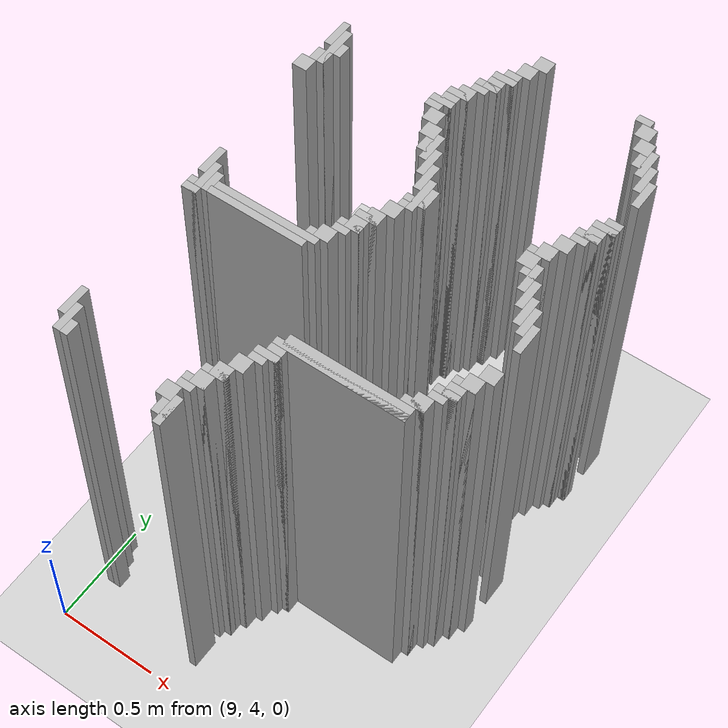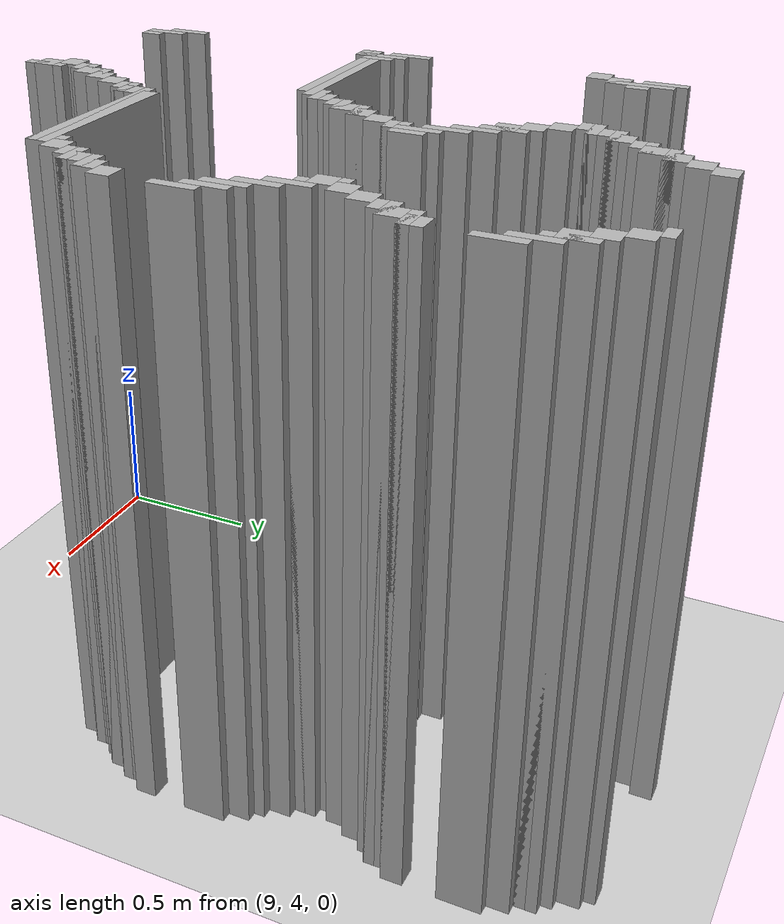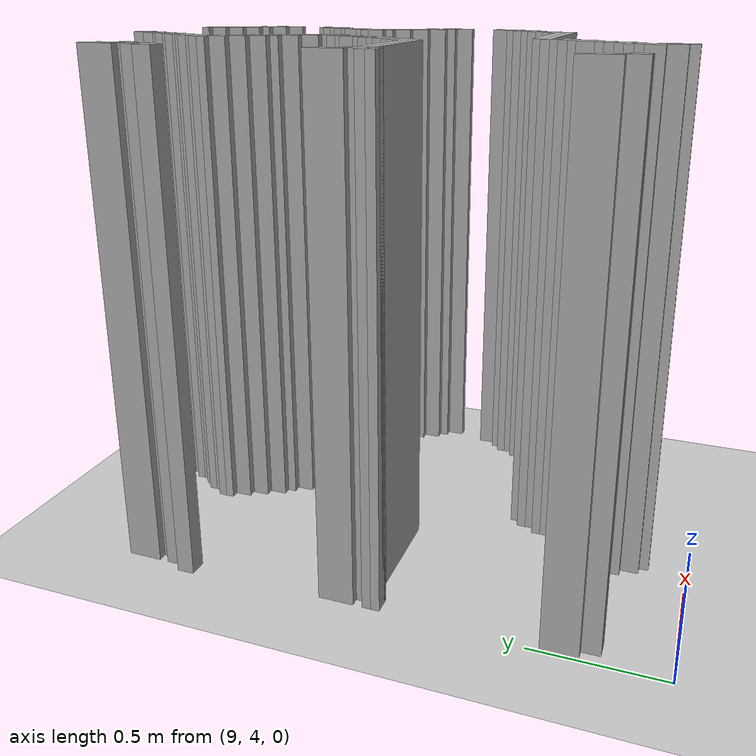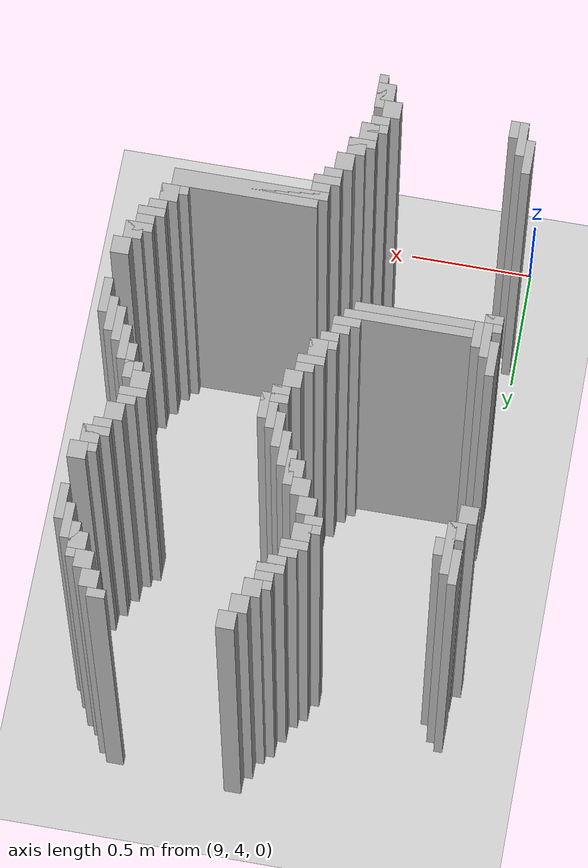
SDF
<sdf version="1.6">
 <world name="slam_world">
  <model name="ground_plane">
   <static>true</static>
   <link name="link">
    <collision name="collision">
     <geometry><plane><normal>0 0 1</normal><size>100 100</size></plane></geometry>
    </collision>
    <visual name="visual">
     <geometry><plane><normal>0 0 1</normal><size>100 100</size></plane></geometry>
     <material>
      <ambient>0.8 0.8 0.8 1</ambient>
      <diffuse>0.8 0.8 0.8 1</diffuse>
      <specular>0.8 0.8 0.8 1</specular>
     </material>
    </visual>
   </link>
  </model>
  <model name="wall_3695">
   <static>true</static>
   <pose>9.814385150812065 6.403712296983758 1.0 0 0 0</pose>
   <link name="link">
    <collision name="collision">
     <geometry><box><size>0.06960556844547564 0.06960556844547564 2.0</size></box></geometry>
    </collision>
    <visual name="visual">
     <geometry><box><size>0.06960556844547564 0.06960556844547564 2.0</size></box></geometry>
     <material><ambient>0.5 0.5 0.5 1</ambient><diffuse>0.7 0.7 0.7 1</diffuse></material>
    </visual>
   </link>
  </model>
  <model name="wall_3706">
   <static>true</static>
   <pose>10.301624129930394 6.386310904872389 1.0 0 0 0</pose>
   <link name="link">
    <collision name="collision">
     <geometry><box><size>0.06960556844547564 0.03480278422273782 2.0</size></box></geometry>
    </collision>
    <visual name="visual">
     <geometry><box><size>0.06960556844547564 0.03480278422273782 2.0</size></box></geometry>
     <material><ambient>0.5 0.5 0.5 1</ambient><diffuse>0.7 0.7 0.7 1</diffuse></material>
    </visual>
   </link>
  </model>
  <model name="wall_3721">
   <static>true</static>
   <pose>9.779582366589327 6.334106728538282 1.0 0 0 0</pose>
   <link name="link">
    <collision name="collision">
     <geometry><box><size>0.06960556844547564 0.06960556844547564 2.0</size></box></geometry>
    </collision>
    <visual name="visual">
     <geometry><box><size>0.06960556844547564 0.06960556844547564 2.0</size></box></geometry>
     <material><ambient>0.5 0.5 0.5 1</ambient><diffuse>0.7 0.7 0.7 1</diffuse></material>
    </visual>
   </link>
  </model>
  <model name="wall_3722">
   <static>true</static>
   <pose>10.336426914153131 6.334106728538282 1.0 0 0 0</pose>
   <link name="link">
    <collision name="collision">
     <geometry><box><size>0.06960556844547564 0.06960556844547564 2.0</size></box></geometry>
    </collision>
    <visual name="visual">
     <geometry><box><size>0.06960556844547564 0.06960556844547564 2.0</size></box></geometry>
     <material><ambient>0.5 0.5 0.5 1</ambient><diffuse>0.7 0.7 0.7 1</diffuse></material>
    </visual>
   </link>
  </model>
  <model name="wall_3748">
   <static>true</static>
   <pose>9.744779582366588 6.2645011600928076 1.0 0 0 0</pose>
   <link name="link">
    <collision name="collision">
     <geometry><box><size>0.06960556844547564 0.06960556844547564 2.0</size></box></geometry>
    </collision>
    <visual name="visual">
     <geometry><box><size>0.06960556844547564 0.06960556844547564 2.0</size></box></geometry>
     <material><ambient>0.5 0.5 0.5 1</ambient><diffuse>0.7 0.7 0.7 1</diffuse></material>
    </visual>
   </link>
  </model>
  <model name="wall_3749">
   <static>true</static>
   <pose>10.37122969837587 6.2645011600928076 1.0 0 0 0</pose>
   <link name="link">
    <collision name="collision">
     <geometry><box><size>0.06960556844547564 0.06960556844547564 2.0</size></box></geometry>
    </collision>
    <visual name="visual">
     <geometry><box><size>0.06960556844547564 0.06960556844547564 2.0</size></box></geometry>
     <material><ambient>0.5 0.5 0.5 1</ambient><diffuse>0.7 0.7 0.7 1</diffuse></material>
    </visual>
   </link>
  </model>
  <model name="wall_3766">
   <static>true</static>
   <pose>9.72737819025522 6.247099767981438 1.0 0 0 0</pose>
   <link name="link">
    <collision name="collision">
     <geometry><box><size>0.10440835266821345 0.03480278422273782 2.0</size></box></geometry>
    </collision>
    <visual name="visual">
     <geometry><box><size>0.10440835266821345 0.03480278422273782 2.0</size></box></geometry>
     <material><ambient>0.5 0.5 0.5 1</ambient><diffuse>0.7 0.7 0.7 1</diffuse></material>
    </visual>
   </link>
  </model>
  <model name="wall_3767">
   <static>true</static>
   <pose>10.423433874709977 6.194895591647332 1.0 0 0 0</pose>
   <link name="link">
    <collision name="collision">
     <geometry><box><size>0.03480278422273782 0.13921113689095127 2.0</size></box></geometry>
    </collision>
    <visual name="visual">
     <geometry><box><size>0.03480278422273782 0.13921113689095127 2.0</size></box></geometry>
     <material><ambient>0.5 0.5 0.5 1</ambient><diffuse>0.7 0.7 0.7 1</diffuse></material>
    </visual>
   </link>
  </model>
  <model name="wall_3784">
   <static>true</static>
   <pose>9.70997679814385 6.194895591647332 1.0 0 0 0</pose>
   <link name="link">
    <collision name="collision">
     <geometry><box><size>0.06960556844547564 0.06960556844547564 2.0</size></box></geometry>
    </collision>
    <visual name="visual">
     <geometry><box><size>0.06960556844547564 0.06960556844547564 2.0</size></box></geometry>
     <material><ambient>0.5 0.5 0.5 1</ambient><diffuse>0.7 0.7 0.7 1</diffuse></material>
    </visual>
   </link>
  </model>
  <model name="wall_3785">
   <static>true</static>
   <pose>10.406032482598608 6.194895591647332 1.0 0 0 0</pose>
   <link name="link">
    <collision name="collision">
     <geometry><box><size>0.06960556844547564 0.06960556844547564 2.0</size></box></geometry>
    </collision>
    <visual name="visual">
     <geometry><box><size>0.06960556844547564 0.06960556844547564 2.0</size></box></geometry>
     <material><ambient>0.5 0.5 0.5 1</ambient><diffuse>0.7 0.7 0.7 1</diffuse></material>
    </visual>
   </link>
  </model>
  <model name="wall_3802">
   <static>true</static>
   <pose>9.692575406032482 6.177494199535962 1.0 0 0 0</pose>
   <link name="link">
    <collision name="collision">
     <geometry><box><size>0.10440835266821345 0.03480278422273782 2.0</size></box></geometry>
    </collision>
    <visual name="visual">
     <geometry><box><size>0.10440835266821345 0.03480278422273782 2.0</size></box></geometry>
     <material><ambient>0.5 0.5 0.5 1</ambient><diffuse>0.7 0.7 0.7 1</diffuse></material>
    </visual>
   </link>
  </model>
  <model name="wall_3803">
   <static>true</static>
   <pose>10.458236658932714 6.125290023201856 1.0 0 0 0</pose>
   <link name="link">
    <collision name="collision">
     <geometry><box><size>0.03480278422273782 0.13921113689095127 2.0</size></box></geometry>
    </collision>
    <visual name="visual">
     <geometry><box><size>0.03480278422273782 0.13921113689095127 2.0</size></box></geometry>
     <material><ambient>0.5 0.5 0.5 1</ambient><diffuse>0.7 0.7 0.7 1</diffuse></material>
    </visual>
   </link>
  </model>
  <model name="wall_3813">
   <static>true</static>
   <pose>9.675174013921113 6.142691415313225 1.0 0 0 0</pose>
   <link name="link">
    <collision name="collision">
     <geometry><box><size>0.06960556844547564 0.03480278422273782 2.0</size></box></geometry>
    </collision>
    <visual name="visual">
     <geometry><box><size>0.06960556844547564 0.03480278422273782 2.0</size></box></geometry>
     <material><ambient>0.5 0.5 0.5 1</ambient><diffuse>0.7 0.7 0.7 1</diffuse></material>
    </visual>
   </link>
  </model>
  <model name="wall_3828">
   <static>true</static>
   <pose>9.031322505800464 6.05568445475638 1.0 0 0 0</pose>
   <link name="link">
    <collision name="collision">
     <geometry><box><size>0.03480278422273782 0.13921113689095127 2.0</size></box></geometry>
    </collision>
    <visual name="visual">
     <geometry><box><size>0.03480278422273782 0.13921113689095127 2.0</size></box></geometry>
     <material><ambient>0.5 0.5 0.5 1</ambient><diffuse>0.7 0.7 0.7 1</diffuse></material>
    </visual>
   </link>
  </model>
  <model name="wall_3829">
   <static>true</static>
   <pose>9.640371229698376 6.090487238979118 1.0 0 0 0</pose>
   <link name="link">
    <collision name="collision">
     <geometry><box><size>0.06960556844547564 0.06960556844547564 2.0</size></box></geometry>
    </collision>
    <visual name="visual">
     <geometry><box><size>0.06960556844547564 0.06960556844547564 2.0</size></box></geometry>
     <material><ambient>0.5 0.5 0.5 1</ambient><diffuse>0.7 0.7 0.7 1</diffuse></material>
    </visual>
   </link>
  </model>
  <model name="wall_3830">
   <static>true</static>
   <pose>10.493039443155451 6.05568445475638 1.0 0 0 0</pose>
   <link name="link">
    <collision name="collision">
     <geometry><box><size>0.03480278422273782 0.13921113689095127 2.0</size></box></geometry>
    </collision>
    <visual name="visual">
     <geometry><box><size>0.03480278422273782 0.13921113689095127 2.0</size></box></geometry>
     <material><ambient>0.5 0.5 0.5 1</ambient><diffuse>0.7 0.7 0.7 1</diffuse></material>
    </visual>
   </link>
  </model>
  <model name="wall_3846">
   <static>true</static>
   <pose>9.066125290023201 5.986078886310905 1.0 0 0 0</pose>
   <link name="link">
    <collision name="collision">
     <geometry><box><size>0.03480278422273782 0.2088167053364269 2.0</size></box></geometry>
    </collision>
    <visual name="visual">
     <geometry><box><size>0.03480278422273782 0.2088167053364269 2.0</size></box></geometry>
     <material><ambient>0.5 0.5 0.5 1</ambient><diffuse>0.7 0.7 0.7 1</diffuse></material>
    </visual>
   </link>
  </model>
  <model name="wall_3847">
   <static>true</static>
   <pose>9.622969837587007 6.073085846867749 1.0 0 0 0</pose>
   <link name="link">
    <collision name="collision">
     <geometry><box><size>0.10440835266821345 0.03480278422273782 2.0</size></box></geometry>
    </collision>
    <visual name="visual">
     <geometry><box><size>0.10440835266821345 0.03480278422273782 2.0</size></box></geometry>
     <material><ambient>0.5 0.5 0.5 1</ambient><diffuse>0.7 0.7 0.7 1</diffuse></material>
    </visual>
   </link>
  </model>
  <model name="wall_3858">
   <static>true</static>
   <pose>9.605568445475638 6.020881670533642 1.0 0 0 0</pose>
   <link name="link">
    <collision name="collision">
     <geometry><box><size>0.06960556844547564 0.06960556844547564 2.0</size></box></geometry>
    </collision>
    <visual name="visual">
     <geometry><box><size>0.06960556844547564 0.06960556844547564 2.0</size></box></geometry>
     <material><ambient>0.5 0.5 0.5 1</ambient><diffuse>0.7 0.7 0.7 1</diffuse></material>
    </visual>
   </link>
  </model>
  <model name="wall_3871">
   <static>true</static>
   <pose>9.100928074245939 5.986078886310905 1.0 0 0 0</pose>
   <link name="link">
    <collision name="collision">
     <geometry><box><size>0.03480278422273782 0.06960556844547564 2.0</size></box></geometry>
    </collision>
    <visual name="visual">
     <geometry><box><size>0.03480278422273782 0.06960556844547564 2.0</size></box></geometry>
     <material><ambient>0.5 0.5 0.5 1</ambient><diffuse>0.7 0.7 0.7 1</diffuse></material>
    </visual>
   </link>
  </model>
  <model name="wall_3872">
   <static>true</static>
   <pose>9.588167053364268 6.003480278422273 1.0 0 0 0</pose>
   <link name="link">
    <collision name="collision">
     <geometry><box><size>0.10440835266821345 0.03480278422273782 2.0</size></box></geometry>
    </collision>
    <visual name="visual">
     <geometry><box><size>0.10440835266821345 0.03480278422273782 2.0</size></box></geometry>
     <material><ambient>0.5 0.5 0.5 1</ambient><diffuse>0.7 0.7 0.7 1</diffuse></material>
    </visual>
   </link>
  </model>
  <model name="wall_3883">
   <static>true</static>
   <pose>9.5707656612529 5.968677494199536 1.0 0 0 0</pose>
   <link name="link">
    <collision name="collision">
     <geometry><box><size>0.06960556844547564 0.03480278422273782 2.0</size></box></geometry>
    </collision>
    <visual name="visual">
     <geometry><box><size>0.06960556844547564 0.03480278422273782 2.0</size></box></geometry>
     <material><ambient>0.5 0.5 0.5 1</ambient><diffuse>0.7 0.7 0.7 1</diffuse></material>
    </visual>
   </link>
  </model>
  <model name="wall_3893">
   <static>true</static>
   <pose>9.048723897911833 5.916473317865429 1.0 0 0 0</pose>
   <link name="link">
    <collision name="collision">
     <geometry><box><size>0.06960556844547564 0.06960556844547564 2.0</size></box></geometry>
    </collision>
    <visual name="visual">
     <geometry><box><size>0.06960556844547564 0.06960556844547564 2.0</size></box></geometry>
     <material><ambient>0.5 0.5 0.5 1</ambient><diffuse>0.7 0.7 0.7 1</diffuse></material>
    </visual>
   </link>
  </model>
  <model name="wall_3894">
   <static>true</static>
   <pose>9.605568445475638 5.916473317865429 1.0 0 0 0</pose>
   <link name="link">
    <collision name="collision">
     <geometry><box><size>0.06960556844547564 0.06960556844547564 2.0</size></box></geometry>
    </collision>
    <visual name="visual">
     <geometry><box><size>0.06960556844547564 0.06960556844547564 2.0</size></box></geometry>
     <material><ambient>0.5 0.5 0.5 1</ambient><diffuse>0.7 0.7 0.7 1</diffuse></material>
    </visual>
   </link>
  </model>
  <model name="wall_3909">
   <static>true</static>
   <pose>9.013921113689095 5.846867749419953 1.0 0 0 0</pose>
   <link name="link">
    <collision name="collision">
     <geometry><box><size>0.06960556844547564 0.06960556844547564 2.0</size></box></geometry>
    </collision>
    <visual name="visual">
     <geometry><box><size>0.06960556844547564 0.06960556844547564 2.0</size></box></geometry>
     <material><ambient>0.5 0.5 0.5 1</ambient><diffuse>0.7 0.7 0.7 1</diffuse></material>
    </visual>
   </link>
  </model>
  <model name="wall_3910">
   <static>true</static>
   <pose>9.640371229698376 5.846867749419953 1.0 0 0 0</pose>
   <link name="link">
    <collision name="collision">
     <geometry><box><size>0.06960556844547564 0.06960556844547564 2.0</size></box></geometry>
    </collision>
    <visual name="visual">
     <geometry><box><size>0.06960556844547564 0.06960556844547564 2.0</size></box></geometry>
     <material><ambient>0.5 0.5 0.5 1</ambient><diffuse>0.7 0.7 0.7 1</diffuse></material>
    </visual>
   </link>
  </model>
  <model name="wall_3911">
   <static>true</static>
   <pose>10.475638051044083 5.846867749419953 1.0 0 0 0</pose>
   <link name="link">
    <collision name="collision">
     <geometry><box><size>0.06960556844547564 0.06960556844547564 2.0</size></box></geometry>
    </collision>
    <visual name="visual">
     <geometry><box><size>0.06960556844547564 0.06960556844547564 2.0</size></box></geometry>
     <material><ambient>0.5 0.5 0.5 1</ambient><diffuse>0.7 0.7 0.7 1</diffuse></material>
    </visual>
   </link>
  </model>
  <model name="wall_3921">
   <static>true</static>
   <pose>9.692575406032482 5.7772621809744775 1.0 0 0 0</pose>
   <link name="link">
    <collision name="collision">
     <geometry><box><size>0.03480278422273782 0.13921113689095127 2.0</size></box></geometry>
    </collision>
    <visual name="visual">
     <geometry><box><size>0.03480278422273782 0.13921113689095127 2.0</size></box></geometry>
     <material><ambient>0.5 0.5 0.5 1</ambient><diffuse>0.7 0.7 0.7 1</diffuse></material>
    </visual>
   </link>
  </model>
  <model name="wall_3922">
   <static>true</static>
   <pose>10.458236658932714 5.8294663573085845 1.0 0 0 0</pose>
   <link name="link">
    <collision name="collision">
     <geometry><box><size>0.10440835266821345 0.03480278422273782 2.0</size></box></geometry>
    </collision>
    <visual name="visual">
     <geometry><box><size>0.10440835266821345 0.03480278422273782 2.0</size></box></geometry>
     <material><ambient>0.5 0.5 0.5 1</ambient><diffuse>0.7 0.7 0.7 1</diffuse></material>
    </visual>
   </link>
  </model>
  <model name="wall_3932">
   <static>true</static>
   <pose>9.675174013921113 5.7772621809744775 1.0 0 0 0</pose>
   <link name="link">
    <collision name="collision">
     <geometry><box><size>0.06960556844547564 0.06960556844547564 2.0</size></box></geometry>
    </collision>
    <visual name="visual">
     <geometry><box><size>0.06960556844547564 0.06960556844547564 2.0</size></box></geometry>
     <material><ambient>0.5 0.5 0.5 1</ambient><diffuse>0.7 0.7 0.7 1</diffuse></material>
    </visual>
   </link>
  </model>
  <model name="wall_3933">
   <static>true</static>
   <pose>10.440835266821345 5.7772621809744775 1.0 0 0 0</pose>
   <link name="link">
    <collision name="collision">
     <geometry><box><size>0.06960556844547564 0.06960556844547564 2.0</size></box></geometry>
    </collision>
    <visual name="visual">
     <geometry><box><size>0.06960556844547564 0.06960556844547564 2.0</size></box></geometry>
     <material><ambient>0.5 0.5 0.5 1</ambient><diffuse>0.7 0.7 0.7 1</diffuse></material>
    </visual>
   </link>
  </model>
  <model name="wall_3943">
   <static>true</static>
   <pose>9.72737819025522 5.707656612529002 1.0 0 0 0</pose>
   <link name="link">
    <collision name="collision">
     <geometry><box><size>0.03480278422273782 0.13921113689095127 2.0</size></box></geometry>
    </collision>
    <visual name="visual">
     <geometry><box><size>0.03480278422273782 0.13921113689095127 2.0</size></box></geometry>
     <material><ambient>0.5 0.5 0.5 1</ambient><diffuse>0.7 0.7 0.7 1</diffuse></material>
    </visual>
   </link>
  </model>
  <model name="wall_3944">
   <static>true</static>
   <pose>10.423433874709977 5.759860788863109 1.0 0 0 0</pose>
   <link name="link">
    <collision name="collision">
     <geometry><box><size>0.10440835266821345 0.03480278422273782 2.0</size></box></geometry>
    </collision>
    <visual name="visual">
     <geometry><box><size>0.10440835266821345 0.03480278422273782 2.0</size></box></geometry>
     <material><ambient>0.5 0.5 0.5 1</ambient><diffuse>0.7 0.7 0.7 1</diffuse></material>
    </visual>
   </link>
  </model>
  <model name="wall_3953">
   <static>true</static>
   <pose>10.406032482598608 5.725058004640371 1.0 0 0 0</pose>
   <link name="link">
    <collision name="collision">
     <geometry><box><size>0.06960556844547564 0.03480278422273782 2.0</size></box></geometry>
    </collision>
    <visual name="visual">
     <geometry><box><size>0.06960556844547564 0.03480278422273782 2.0</size></box></geometry>
     <material><ambient>0.5 0.5 0.5 1</ambient><diffuse>0.7 0.7 0.7 1</diffuse></material>
    </visual>
   </link>
  </model>
  <model name="wall_3963">
   <static>true</static>
   <pose>9.762180974477959 5.638051044083526 1.0 0 0 0</pose>
   <link name="link">
    <collision name="collision">
     <geometry><box><size>0.03480278422273782 0.13921113689095127 2.0</size></box></geometry>
    </collision>
    <visual name="visual">
     <geometry><box><size>0.03480278422273782 0.13921113689095127 2.0</size></box></geometry>
     <material><ambient>0.5 0.5 0.5 1</ambient><diffuse>0.7 0.7 0.7 1</diffuse></material>
    </visual>
   </link>
  </model>
  <model name="wall_3964">
   <static>true</static>
   <pose>10.37122969837587 5.672853828306264 1.0 0 0 0</pose>
   <link name="link">
    <collision name="collision">
     <geometry><box><size>0.06960556844547564 0.06960556844547564 2.0</size></box></geometry>
    </collision>
    <visual name="visual">
     <geometry><box><size>0.06960556844547564 0.06960556844547564 2.0</size></box></geometry>
     <material><ambient>0.5 0.5 0.5 1</ambient><diffuse>0.7 0.7 0.7 1</diffuse></material>
    </visual>
   </link>
  </model>
  <model name="wall_3974">
   <static>true</static>
   <pose>9.796983758700696 5.551044083526682 1.0 0 0 0</pose>
   <link name="link">
    <collision name="collision">
     <geometry><box><size>0.03480278422273782 0.17401392111368907 2.0</size></box></geometry>
    </collision>
    <visual name="visual">
     <geometry><box><size>0.03480278422273782 0.17401392111368907 2.0</size></box></geometry>
     <material><ambient>0.5 0.5 0.5 1</ambient><diffuse>0.7 0.7 0.7 1</diffuse></material>
    </visual>
   </link>
  </model>
  <model name="wall_3975">
   <static>true</static>
   <pose>10.336426914153131 5.603248259860789 1.0 0 0 0</pose>
   <link name="link">
    <collision name="collision">
     <geometry><box><size>0.06960556844547564 0.06960556844547564 2.0</size></box></geometry>
    </collision>
    <visual name="visual">
     <geometry><box><size>0.06960556844547564 0.06960556844547564 2.0</size></box></geometry>
     <material><ambient>0.5 0.5 0.5 1</ambient><diffuse>0.7 0.7 0.7 1</diffuse></material>
    </visual>
   </link>
  </model>
  <model name="wall_3986">
   <static>true</static>
   <pose>9.831786542923433 5.551044083526682 1.0 0 0 0</pose>
   <link name="link">
    <collision name="collision">
     <geometry><box><size>0.03480278422273782 0.10440835266821345 2.0</size></box></geometry>
    </collision>
    <visual name="visual">
     <geometry><box><size>0.03480278422273782 0.10440835266821345 2.0</size></box></geometry>
     <material><ambient>0.5 0.5 0.5 1</ambient><diffuse>0.7 0.7 0.7 1</diffuse></material>
    </visual>
   </link>
  </model>
  <model name="wall_3987">
   <static>true</static>
   <pose>10.319025522041763 5.58584686774942 1.0 0 0 0</pose>
   <link name="link">
    <collision name="collision">
     <geometry><box><size>0.10440835266821345 0.03480278422273782 2.0</size></box></geometry>
    </collision>
    <visual name="visual">
     <geometry><box><size>0.10440835266821345 0.03480278422273782 2.0</size></box></geometry>
     <material><ambient>0.5 0.5 0.5 1</ambient><diffuse>0.7 0.7 0.7 1</diffuse></material>
    </visual>
   </link>
  </model>
  <model name="wall_3998">
   <static>true</static>
   <pose>10.301624129930394 5.533642691415313 1.0 0 0 0</pose>
   <link name="link">
    <collision name="collision">
     <geometry><box><size>0.06960556844547564 0.06960556844547564 2.0</size></box></geometry>
    </collision>
    <visual name="visual">
     <geometry><box><size>0.06960556844547564 0.06960556844547564 2.0</size></box></geometry>
     <material><ambient>0.5 0.5 0.5 1</ambient><diffuse>0.7 0.7 0.7 1</diffuse></material>
    </visual>
   </link>
  </model>
  <model name="wall_4014">
   <static>true</static>
   <pose>9.796983758700696 5.516241299303944 1.0 0 0 0</pose>
   <link name="link">
    <collision name="collision">
     <geometry><box><size>0.10440835266821345 0.03480278422273782 2.0</size></box></geometry>
    </collision>
    <visual name="visual">
     <geometry><box><size>0.10440835266821345 0.03480278422273782 2.0</size></box></geometry>
     <material><ambient>0.5 0.5 0.5 1</ambient><diffuse>0.7 0.7 0.7 1</diffuse></material>
    </visual>
   </link>
  </model>
  <model name="wall_4015">
   <static>true</static>
   <pose>10.3538283062645 5.464037122969837 1.0 0 0 0</pose>
   <link name="link">
    <collision name="collision">
     <geometry><box><size>0.03480278422273782 0.13921113689095127 2.0</size></box></geometry>
    </collision>
    <visual name="visual">
     <geometry><box><size>0.03480278422273782 0.13921113689095127 2.0</size></box></geometry>
     <material><ambient>0.5 0.5 0.5 1</ambient><diffuse>0.7 0.7 0.7 1</diffuse></material>
    </visual>
   </link>
  </model>
  <model name="wall_4030">
   <static>true</static>
   <pose>9.779582366589327 5.481438515081206 1.0 0 0 0</pose>
   <link name="link">
    <collision name="collision">
     <geometry><box><size>0.06960556844547564 0.03480278422273782 2.0</size></box></geometry>
    </collision>
    <visual name="visual">
     <geometry><box><size>0.06960556844547564 0.03480278422273782 2.0</size></box></geometry>
     <material><ambient>0.5 0.5 0.5 1</ambient><diffuse>0.7 0.7 0.7 1</diffuse></material>
    </visual>
   </link>
  </model>
  <model name="wall_4031">
   <static>true</static>
   <pose>10.336426914153131 5.481438515081206 1.0 0 0 0</pose>
   <link name="link">
    <collision name="collision">
     <geometry><box><size>0.06960556844547564 0.03480278422273782 2.0</size></box></geometry>
    </collision>
    <visual name="visual">
     <geometry><box><size>0.06960556844547564 0.03480278422273782 2.0</size></box></geometry>
     <material><ambient>0.5 0.5 0.5 1</ambient><diffuse>0.7 0.7 0.7 1</diffuse></material>
    </visual>
   </link>
  </model>
  <model name="wall_4045">
   <static>true</static>
   <pose>9.744779582366588 5.4292343387471 1.0 0 0 0</pose>
   <link name="link">
    <collision name="collision">
     <geometry><box><size>0.06960556844547564 0.06960556844547564 2.0</size></box></geometry>
    </collision>
    <visual name="visual">
     <geometry><box><size>0.06960556844547564 0.06960556844547564 2.0</size></box></geometry>
     <material><ambient>0.5 0.5 0.5 1</ambient><diffuse>0.7 0.7 0.7 1</diffuse></material>
    </visual>
   </link>
  </model>
  <model name="wall_4046">
   <static>true</static>
   <pose>10.38863109048724 5.3944315545243615 1.0 0 0 0</pose>
   <link name="link">
    <collision name="collision">
     <geometry><box><size>0.03480278422273782 0.13921113689095127 2.0</size></box></geometry>
    </collision>
    <visual name="visual">
     <geometry><box><size>0.03480278422273782 0.13921113689095127 2.0</size></box></geometry>
     <material><ambient>0.5 0.5 0.5 1</ambient><diffuse>0.7 0.7 0.7 1</diffuse></material>
    </visual>
   </link>
  </model>
  <model name="wall_4060">
   <static>true</static>
   <pose>9.70997679814385 5.359628770301624 1.0 0 0 0</pose>
   <link name="link">
    <collision name="collision">
     <geometry><box><size>0.06960556844547564 0.06960556844547564 2.0</size></box></geometry>
    </collision>
    <visual name="visual">
     <geometry><box><size>0.06960556844547564 0.06960556844547564 2.0</size></box></geometry>
     <material><ambient>0.5 0.5 0.5 1</ambient><diffuse>0.7 0.7 0.7 1</diffuse></material>
    </visual>
   </link>
  </model>
  <model name="wall_4061">
   <static>true</static>
   <pose>10.423433874709977 5.324825986078886 1.0 0 0 0</pose>
   <link name="link">
    <collision name="collision">
     <geometry><box><size>0.03480278422273782 0.13921113689095127 2.0</size></box></geometry>
    </collision>
    <visual name="visual">
     <geometry><box><size>0.03480278422273782 0.13921113689095127 2.0</size></box></geometry>
     <material><ambient>0.5 0.5 0.5 1</ambient><diffuse>0.7 0.7 0.7 1</diffuse></material>
    </visual>
   </link>
  </model>
  <model name="wall_4075">
   <static>true</static>
   <pose>9.692575406032482 5.342227378190255 1.0 0 0 0</pose>
   <link name="link">
    <collision name="collision">
     <geometry><box><size>0.10440835266821345 0.03480278422273782 2.0</size></box></geometry>
    </collision>
    <visual name="visual">
     <geometry><box><size>0.10440835266821345 0.03480278422273782 2.0</size></box></geometry>
     <material><ambient>0.5 0.5 0.5 1</ambient><diffuse>0.7 0.7 0.7 1</diffuse></material>
    </visual>
   </link>
  </model>
  <model name="wall_4076">
   <static>true</static>
   <pose>10.458236658932714 5.290023201856148 1.0 0 0 0</pose>
   <link name="link">
    <collision name="collision">
     <geometry><box><size>0.03480278422273782 0.13921113689095127 2.0</size></box></geometry>
    </collision>
    <visual name="visual">
     <geometry><box><size>0.03480278422273782 0.13921113689095127 2.0</size></box></geometry>
     <material><ambient>0.5 0.5 0.5 1</ambient><diffuse>0.7 0.7 0.7 1</diffuse></material>
    </visual>
   </link>
  </model>
  <model name="wall_4088">
   <static>true</static>
   <pose>9.675174013921113 5.290023201856148 1.0 0 0 0</pose>
   <link name="link">
    <collision name="collision">
     <geometry><box><size>0.06960556844547564 0.06960556844547564 2.0</size></box></geometry>
    </collision>
    <visual name="visual">
     <geometry><box><size>0.06960556844547564 0.06960556844547564 2.0</size></box></geometry>
     <material><ambient>0.5 0.5 0.5 1</ambient><diffuse>0.7 0.7 0.7 1</diffuse></material>
    </visual>
   </link>
  </model>
  <model name="wall_4100">
   <static>true</static>
   <pose>9.031322505800464 5.220417633410673 1.0 0 0 0</pose>
   <link name="link">
    <collision name="collision">
     <geometry><box><size>0.03480278422273782 0.13921113689095127 2.0</size></box></geometry>
    </collision>
    <visual name="visual">
     <geometry><box><size>0.03480278422273782 0.13921113689095127 2.0</size></box></geometry>
     <material><ambient>0.5 0.5 0.5 1</ambient><diffuse>0.7 0.7 0.7 1</diffuse></material>
    </visual>
   </link>
  </model>
  <model name="wall_4101">
   <static>true</static>
   <pose>9.657772621809745 5.27262180974478 1.0 0 0 0</pose>
   <link name="link">
    <collision name="collision">
     <geometry><box><size>0.10440835266821345 0.03480278422273782 2.0</size></box></geometry>
    </collision>
    <visual name="visual">
     <geometry><box><size>0.10440835266821345 0.03480278422273782 2.0</size></box></geometry>
     <material><ambient>0.5 0.5 0.5 1</ambient><diffuse>0.7 0.7 0.7 1</diffuse></material>
    </visual>
   </link>
  </model>
  <model name="wall_4102">
   <static>true</static>
   <pose>10.493039443155451 5.220417633410673 1.0 0 0 0</pose>
   <link name="link">
    <collision name="collision">
     <geometry><box><size>0.03480278422273782 0.13921113689095127 2.0</size></box></geometry>
    </collision>
    <visual name="visual">
     <geometry><box><size>0.03480278422273782 0.13921113689095127 2.0</size></box></geometry>
     <material><ambient>0.5 0.5 0.5 1</ambient><diffuse>0.7 0.7 0.7 1</diffuse></material>
    </visual>
   </link>
  </model>
  <model name="wall_4112">
   <static>true</static>
   <pose>9.640371229698376 5.237819025522041 1.0 0 0 0</pose>
   <link name="link">
    <collision name="collision">
     <geometry><box><size>0.06960556844547564 0.03480278422273782 2.0</size></box></geometry>
    </collision>
    <visual name="visual">
     <geometry><box><size>0.06960556844547564 0.03480278422273782 2.0</size></box></geometry>
     <material><ambient>0.5 0.5 0.5 1</ambient><diffuse>0.7 0.7 0.7 1</diffuse></material>
    </visual>
   </link>
  </model>
  <model name="wall_4123">
   <static>true</static>
   <pose>9.066125290023201 5.133410672853828 1.0 0 0 0</pose>
   <link name="link">
    <collision name="collision">
     <geometry><box><size>0.03480278422273782 0.17401392111368907 2.0</size></box></geometry>
    </collision>
    <visual name="visual">
     <geometry><box><size>0.03480278422273782 0.17401392111368907 2.0</size></box></geometry>
     <material><ambient>0.5 0.5 0.5 1</ambient><diffuse>0.7 0.7 0.7 1</diffuse></material>
    </visual>
   </link>
  </model>
  <model name="wall_4124">
   <static>true</static>
   <pose>9.605568445475638 5.185614849187935 1.0 0 0 0</pose>
   <link name="link">
    <collision name="collision">
     <geometry><box><size>0.06960556844547564 0.06960556844547564 2.0</size></box></geometry>
    </collision>
    <visual name="visual">
     <geometry><box><size>0.06960556844547564 0.06960556844547564 2.0</size></box></geometry>
     <material><ambient>0.5 0.5 0.5 1</ambient><diffuse>0.7 0.7 0.7 1</diffuse></material>
    </visual>
   </link>
  </model>
  <model name="wall_4138">
   <static>true</static>
   <pose>9.100928074245939 5.133410672853828 1.0 0 0 0</pose>
   <link name="link">
    <collision name="collision">
     <geometry><box><size>0.03480278422273782 0.10440835266821345 2.0</size></box></geometry>
    </collision>
    <visual name="visual">
     <geometry><box><size>0.03480278422273782 0.10440835266821345 2.0</size></box></geometry>
     <material><ambient>0.5 0.5 0.5 1</ambient><diffuse>0.7 0.7 0.7 1</diffuse></material>
    </visual>
   </link>
  </model>
  <model name="wall_4139">
   <static>true</static>
   <pose>9.588167053364268 5.168213457076566 1.0 0 0 0</pose>
   <link name="link">
    <collision name="collision">
     <geometry><box><size>0.10440835266821345 0.03480278422273782 2.0</size></box></geometry>
    </collision>
    <visual name="visual">
     <geometry><box><size>0.10440835266821345 0.03480278422273782 2.0</size></box></geometry>
     <material><ambient>0.5 0.5 0.5 1</ambient><diffuse>0.7 0.7 0.7 1</diffuse></material>
    </visual>
   </link>
  </model>
  <model name="wall_4153">
   <static>true</static>
   <pose>9.361948955916473 5.133410672853828 1.0 0 0 0</pose>
   <link name="link">
    <collision name="collision">
     <geometry><box><size>0.4872389791183295 0.03480278422273782 2.0</size></box></geometry>
    </collision>
    <visual name="visual">
     <geometry><box><size>0.4872389791183295 0.03480278422273782 2.0</size></box></geometry>
     <material><ambient>0.5 0.5 0.5 1</ambient><diffuse>0.7 0.7 0.7 1</diffuse></material>
    </visual>
   </link>
  </model>
  <model name="wall_4164">
   <static>true</static>
   <pose>9.292343387470996 5.09860788863109 1.0 0 0 0</pose>
   <link name="link">
    <collision name="collision">
     <geometry><box><size>0.5568445475638051 0.03480278422273782 2.0</size></box></geometry>
    </collision>
    <visual name="visual">
     <geometry><box><size>0.5568445475638051 0.03480278422273782 2.0</size></box></geometry>
     <material><ambient>0.5 0.5 0.5 1</ambient><diffuse>0.7 0.7 0.7 1</diffuse></material>
    </visual>
   </link>
  </model>
  <model name="wall_4179">
   <static>true</static>
   <pose>9.048723897911833 5.0638051044083525 1.0 0 0 0</pose>
   <link name="link">
    <collision name="collision">
     <geometry><box><size>0.06960556844547564 0.03480278422273782 2.0</size></box></geometry>
    </collision>
    <visual name="visual">
     <geometry><box><size>0.06960556844547564 0.03480278422273782 2.0</size></box></geometry>
     <material><ambient>0.5 0.5 0.5 1</ambient><diffuse>0.7 0.7 0.7 1</diffuse></material>
    </visual>
   </link>
  </model>
  <model name="wall_4195">
   <static>true</static>
   <pose>10.475638051044083 5.0116009280742455 1.0 0 0 0</pose>
   <link name="link">
    <collision name="collision">
     <geometry><box><size>0.06960556844547564 0.06960556844547564 2.0</size></box></geometry>
    </collision>
    <visual name="visual">
     <geometry><box><size>0.06960556844547564 0.06960556844547564 2.0</size></box></geometry>
     <material><ambient>0.5 0.5 0.5 1</ambient><diffuse>0.7 0.7 0.7 1</diffuse></material>
    </visual>
   </link>
  </model>
  <model name="wall_4210">
   <static>true</static>
   <pose>10.440835266821345 4.94199535962877 1.0 0 0 0</pose>
   <link name="link">
    <collision name="collision">
     <geometry><box><size>0.06960556844547564 0.06960556844547564 2.0</size></box></geometry>
    </collision>
    <visual name="visual">
     <geometry><box><size>0.06960556844547564 0.06960556844547564 2.0</size></box></geometry>
     <material><ambient>0.5 0.5 0.5 1</ambient><diffuse>0.7 0.7 0.7 1</diffuse></material>
    </visual>
   </link>
  </model>
  <model name="wall_4225">
   <static>true</static>
   <pose>10.423433874709977 4.924593967517401 1.0 0 0 0</pose>
   <link name="link">
    <collision name="collision">
     <geometry><box><size>0.10440835266821345 0.03480278422273782 2.0</size></box></geometry>
    </collision>
    <visual name="visual">
     <geometry><box><size>0.10440835266821345 0.03480278422273782 2.0</size></box></geometry>
     <material><ambient>0.5 0.5 0.5 1</ambient><diffuse>0.7 0.7 0.7 1</diffuse></material>
    </visual>
   </link>
  </model>
  <model name="wall_4238">
   <static>true</static>
   <pose>10.406032482598608 4.872389791183294 1.0 0 0 0</pose>
   <link name="link">
    <collision name="collision">
     <geometry><box><size>0.06960556844547564 0.06960556844547564 2.0</size></box></geometry>
    </collision>
    <visual name="visual">
     <geometry><box><size>0.06960556844547564 0.06960556844547564 2.0</size></box></geometry>
     <material><ambient>0.5 0.5 0.5 1</ambient><diffuse>0.7 0.7 0.7 1</diffuse></material>
    </visual>
   </link>
  </model>
  <model name="wall_4251">
   <static>true</static>
   <pose>10.38863109048724 4.854988399071925 1.0 0 0 0</pose>
   <link name="link">
    <collision name="collision">
     <geometry><box><size>0.10440835266821345 0.03480278422273782 2.0</size></box></geometry>
    </collision>
    <visual name="visual">
     <geometry><box><size>0.10440835266821345 0.03480278422273782 2.0</size></box></geometry>
     <material><ambient>0.5 0.5 0.5 1</ambient><diffuse>0.7 0.7 0.7 1</diffuse></material>
    </visual>
   </link>
  </model>
  <model name="wall_4262">
   <static>true</static>
   <pose>10.37122969837587 4.820185614849188 1.0 0 0 0</pose>
   <link name="link">
    <collision name="collision">
     <geometry><box><size>0.06960556844547564 0.03480278422273782 2.0</size></box></geometry>
    </collision>
    <visual name="visual">
     <geometry><box><size>0.06960556844547564 0.03480278422273782 2.0</size></box></geometry>
     <material><ambient>0.5 0.5 0.5 1</ambient><diffuse>0.7 0.7 0.7 1</diffuse></material>
    </visual>
   </link>
  </model>
  <model name="wall_4275">
   <static>true</static>
   <pose>10.336426914153131 4.767981438515081 1.0 0 0 0</pose>
   <link name="link">
    <collision name="collision">
     <geometry><box><size>0.06960556844547564 0.06960556844547564 2.0</size></box></geometry>
    </collision>
    <visual name="visual">
     <geometry><box><size>0.06960556844547564 0.06960556844547564 2.0</size></box></geometry>
     <material><ambient>0.5 0.5 0.5 1</ambient><diffuse>0.7 0.7 0.7 1</diffuse></material>
    </visual>
   </link>
  </model>
  <model name="wall_4287">
   <static>true</static>
   <pose>10.319025522041763 4.750580046403712 1.0 0 0 0</pose>
   <link name="link">
    <collision name="collision">
     <geometry><box><size>0.10440835266821345 0.03480278422273782 2.0</size></box></geometry>
    </collision>
    <visual name="visual">
     <geometry><box><size>0.10440835266821345 0.03480278422273782 2.0</size></box></geometry>
     <material><ambient>0.5 0.5 0.5 1</ambient><diffuse>0.7 0.7 0.7 1</diffuse></material>
    </visual>
   </link>
  </model>
  <model name="wall_4300">
   <static>true</static>
   <pose>10.058004640371228 4.698375870069605 1.0 0 0 0</pose>
   <link name="link">
    <collision name="collision">
     <geometry><box><size>0.5568445475638051 0.06960556844547564 2.0</size></box></geometry>
    </collision>
    <visual name="visual">
     <geometry><box><size>0.5568445475638051 0.06960556844547564 2.0</size></box></geometry>
     <material><ambient>0.5 0.5 0.5 1</ambient><diffuse>0.7 0.7 0.7 1</diffuse></material>
    </visual>
   </link>
  </model>
  <model name="wall_4311">
   <static>true</static>
   <pose>10.04060324825986 4.6809744779582365 1.0 0 0 0</pose>
   <link name="link">
    <collision name="collision">
     <geometry><box><size>0.5916473317865429 0.03480278422273782 2.0</size></box></geometry>
    </collision>
    <visual name="visual">
     <geometry><box><size>0.5916473317865429 0.03480278422273782 2.0</size></box></geometry>
     <material><ambient>0.5 0.5 0.5 1</ambient><diffuse>0.7 0.7 0.7 1</diffuse></material>
    </visual>
   </link>
  </model>
  <model name="wall_4323">
   <static>true</static>
   <pose>9.779582366589327 4.6287703016241295 1.0 0 0 0</pose>
   <link name="link">
    <collision name="collision">
     <geometry><box><size>0.06960556844547564 0.06960556844547564 2.0</size></box></geometry>
    </collision>
    <visual name="visual">
     <geometry><box><size>0.06960556844547564 0.06960556844547564 2.0</size></box></geometry>
     <material><ambient>0.5 0.5 0.5 1</ambient><diffuse>0.7 0.7 0.7 1</diffuse></material>
    </visual>
   </link>
  </model>
  <model name="wall_4336">
   <static>true</static>
   <pose>9.762180974477959 4.611368909512761 1.0 0 0 0</pose>
   <link name="link">
    <collision name="collision">
     <geometry><box><size>0.10440835266821345 0.03480278422273782 2.0</size></box></geometry>
    </collision>
    <visual name="visual">
     <geometry><box><size>0.10440835266821345 0.03480278422273782 2.0</size></box></geometry>
     <material><ambient>0.5 0.5 0.5 1</ambient><diffuse>0.7 0.7 0.7 1</diffuse></material>
    </visual>
   </link>
  </model>
  <model name="wall_4345">
   <static>true</static>
   <pose>9.744779582366588 4.576566125290023 1.0 0 0 0</pose>
   <link name="link">
    <collision name="collision">
     <geometry><box><size>0.06960556844547564 0.03480278422273782 2.0</size></box></geometry>
    </collision>
    <visual name="visual">
     <geometry><box><size>0.06960556844547564 0.03480278422273782 2.0</size></box></geometry>
     <material><ambient>0.5 0.5 0.5 1</ambient><diffuse>0.7 0.7 0.7 1</diffuse></material>
    </visual>
   </link>
  </model>
  <model name="wall_4357">
   <static>true</static>
   <pose>9.70997679814385 4.524361948955916 1.0 0 0 0</pose>
   <link name="link">
    <collision name="collision">
     <geometry><box><size>0.06960556844547564 0.06960556844547564 2.0</size></box></geometry>
    </collision>
    <visual name="visual">
     <geometry><box><size>0.06960556844547564 0.06960556844547564 2.0</size></box></geometry>
     <material><ambient>0.5 0.5 0.5 1</ambient><diffuse>0.7 0.7 0.7 1</diffuse></material>
    </visual>
   </link>
  </model>
  <model name="wall_4370">
   <static>true</static>
   <pose>9.675174013921113 4.454756380510441 1.0 0 0 0</pose>
   <link name="link">
    <collision name="collision">
     <geometry><box><size>0.06960556844547564 0.06960556844547564 2.0</size></box></geometry>
    </collision>
    <visual name="visual">
     <geometry><box><size>0.06960556844547564 0.06960556844547564 2.0</size></box></geometry>
     <material><ambient>0.5 0.5 0.5 1</ambient><diffuse>0.7 0.7 0.7 1</diffuse></material>
    </visual>
   </link>
  </model>
  <model name="wall_4382">
   <static>true</static>
   <pose>9.031322505800464 4.385150812064965 1.0 0 0 0</pose>
   <link name="link">
    <collision name="collision">
     <geometry><box><size>0.03480278422273782 0.13921113689095127 2.0</size></box></geometry>
    </collision>
    <visual name="visual">
     <geometry><box><size>0.03480278422273782 0.13921113689095127 2.0</size></box></geometry>
     <material><ambient>0.5 0.5 0.5 1</ambient><diffuse>0.7 0.7 0.7 1</diffuse></material>
    </visual>
   </link>
  </model>
  <model name="wall_4383">
   <static>true</static>
   <pose>9.657772621809745 4.437354988399072 1.0 0 0 0</pose>
   <link name="link">
    <collision name="collision">
     <geometry><box><size>0.10440835266821345 0.03480278422273782 2.0</size></box></geometry>
    </collision>
    <visual name="visual">
     <geometry><box><size>0.10440835266821345 0.03480278422273782 2.0</size></box></geometry>
     <material><ambient>0.5 0.5 0.5 1</ambient><diffuse>0.7 0.7 0.7 1</diffuse></material>
    </visual>
   </link>
  </model>
  <model name="wall_4391">
   <static>true</static>
   <pose>9.640371229698376 4.385150812064965 1.0 0 0 0</pose>
   <link name="link">
    <collision name="collision">
     <geometry><box><size>0.06960556844547564 0.06960556844547564 2.0</size></box></geometry>
    </collision>
    <visual name="visual">
     <geometry><box><size>0.06960556844547564 0.06960556844547564 2.0</size></box></geometry>
     <material><ambient>0.5 0.5 0.5 1</ambient><diffuse>0.7 0.7 0.7 1</diffuse></material>
    </visual>
   </link>
  </model>
  <model name="wall_4401">
   <static>true</static>
   <pose>9.066125290023201 4.315545243619489 1.0 0 0 0</pose>
   <link name="link">
    <collision name="collision">
     <geometry><box><size>0.03480278422273782 0.13921113689095127 2.0</size></box></geometry>
    </collision>
    <visual name="visual">
     <geometry><box><size>0.03480278422273782 0.13921113689095127 2.0</size></box></geometry>
     <material><ambient>0.5 0.5 0.5 1</ambient><diffuse>0.7 0.7 0.7 1</diffuse></material>
    </visual>
   </link>
  </model>
  <model name="wall_4402">
   <static>true</static>
   <pose>9.622969837587007 4.367749419953596 1.0 0 0 0</pose>
   <link name="link">
    <collision name="collision">
     <geometry><box><size>0.10440835266821345 0.03480278422273782 2.0</size></box></geometry>
    </collision>
    <visual name="visual">
     <geometry><box><size>0.10440835266821345 0.03480278422273782 2.0</size></box></geometry>
     <material><ambient>0.5 0.5 0.5 1</ambient><diffuse>0.7 0.7 0.7 1</diffuse></material>
    </visual>
   </link>
  </model>
  <model name="wall_4410">
   <static>true</static>
   <pose>9.605568445475638 4.332946635730858 1.0 0 0 0</pose>
   <link name="link">
    <collision name="collision">
     <geometry><box><size>0.06960556844547564 0.03480278422273782 2.0</size></box></geometry>
    </collision>
    <visual name="visual">
     <geometry><box><size>0.06960556844547564 0.03480278422273782 2.0</size></box></geometry>
     <material><ambient>0.5 0.5 0.5 1</ambient><diffuse>0.7 0.7 0.7 1</diffuse></material>
    </visual>
   </link>
  </model>
  <model name="wall_4422">
   <static>true</static>
   <pose>9.100928074245939 4.280742459396752 1.0 0 0 0</pose>
   <link name="link">
    <collision name="collision">
     <geometry><box><size>0.03480278422273782 0.06960556844547564 2.0</size></box></geometry>
    </collision>
    <visual name="visual">
     <geometry><box><size>0.03480278422273782 0.06960556844547564 2.0</size></box></geometry>
     <material><ambient>0.5 0.5 0.5 1</ambient><diffuse>0.7 0.7 0.7 1</diffuse></material>
    </visual>
   </link>
  </model>
  <model name="wall_4423">
   <static>true</static>
   <pose>9.5707656612529 4.280742459396752 1.0 0 0 0</pose>
   <link name="link">
    <collision name="collision">
     <geometry><box><size>0.06960556844547564 0.06960556844547564 2.0</size></box></geometry>
    </collision>
    <visual name="visual">
     <geometry><box><size>0.06960556844547564 0.06960556844547564 2.0</size></box></geometry>
     <material><ambient>0.5 0.5 0.5 1</ambient><diffuse>0.7 0.7 0.7 1</diffuse></material>
    </visual>
   </link>
  </model>
  <model name="wall_4436">
   <static>true</static>
   <pose>9.622969837587007 4.211136890951276 1.0 0 0 0</pose>
   <link name="link">
    <collision name="collision">
     <geometry><box><size>0.03480278422273782 0.13921113689095127 2.0</size></box></geometry>
    </collision>
    <visual name="visual">
     <geometry><box><size>0.03480278422273782 0.13921113689095127 2.0</size></box></geometry>
     <material><ambient>0.5 0.5 0.5 1</ambient><diffuse>0.7 0.7 0.7 1</diffuse></material>
    </visual>
   </link>
  </model>
  <model name="wall_4450">
   <static>true</static>
   <pose>9.605568445475638 4.211136890951276 1.0 0 0 0</pose>
   <link name="link">
    <collision name="collision">
     <geometry><box><size>0.06960556844547564 0.06960556844547564 2.0</size></box></geometry>
    </collision>
    <visual name="visual">
     <geometry><box><size>0.06960556844547564 0.06960556844547564 2.0</size></box></geometry>
     <material><ambient>0.5 0.5 0.5 1</ambient><diffuse>0.7 0.7 0.7 1</diffuse></material>
    </visual>
   </link>
  </model>
 </world>
</sdf>
